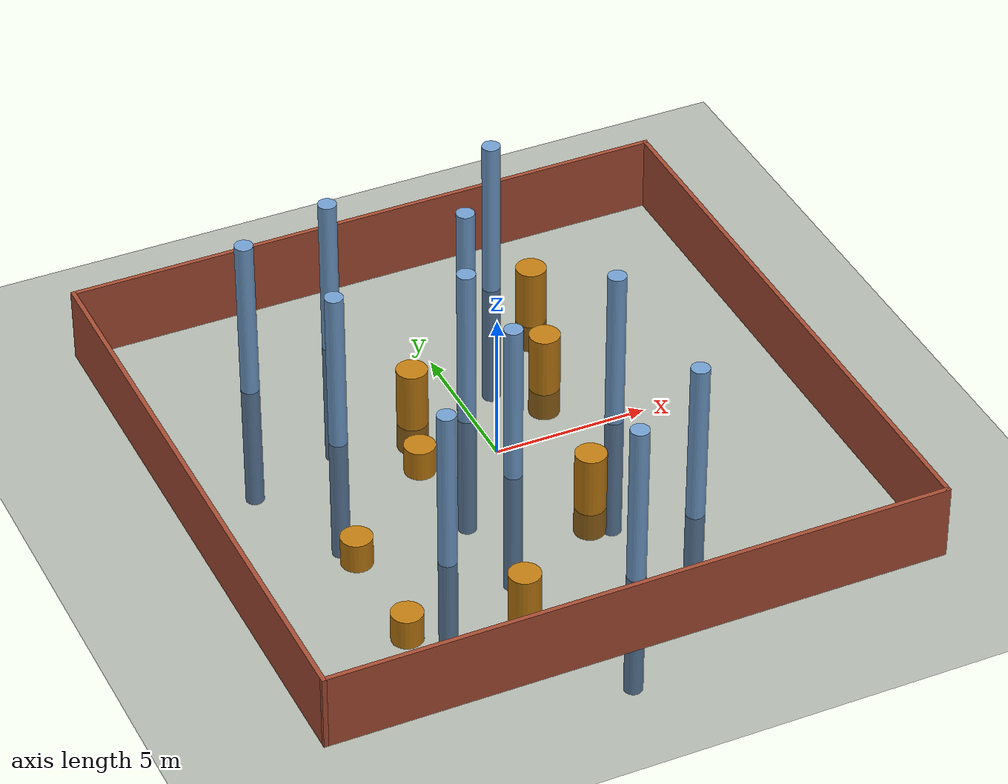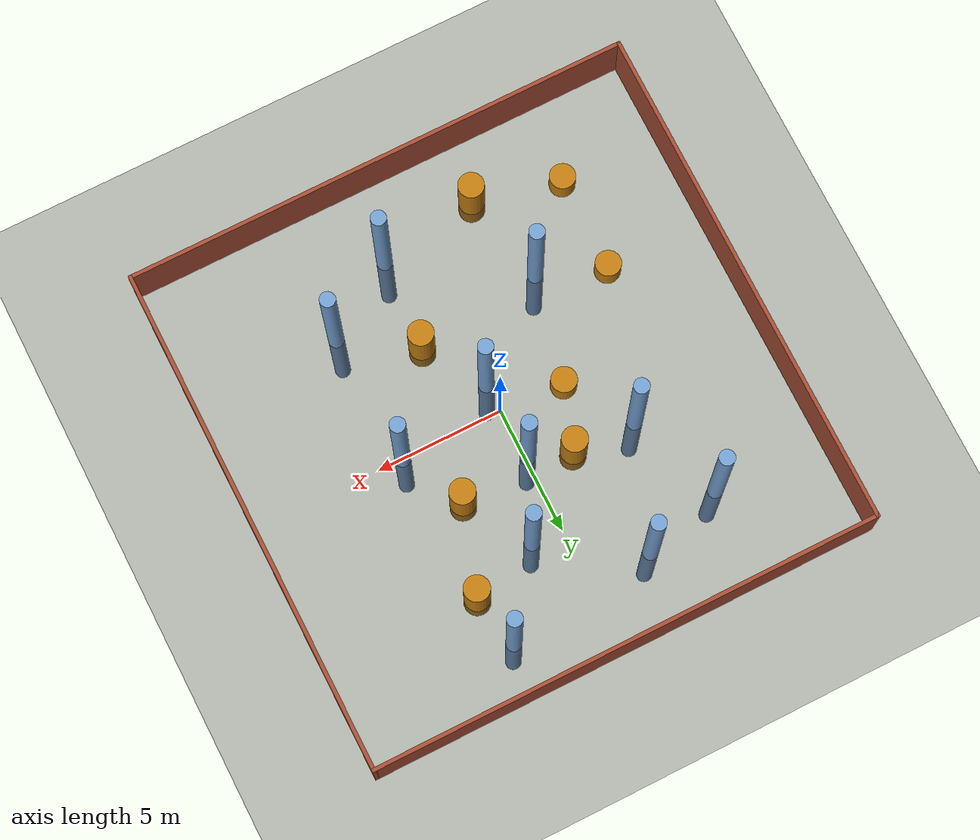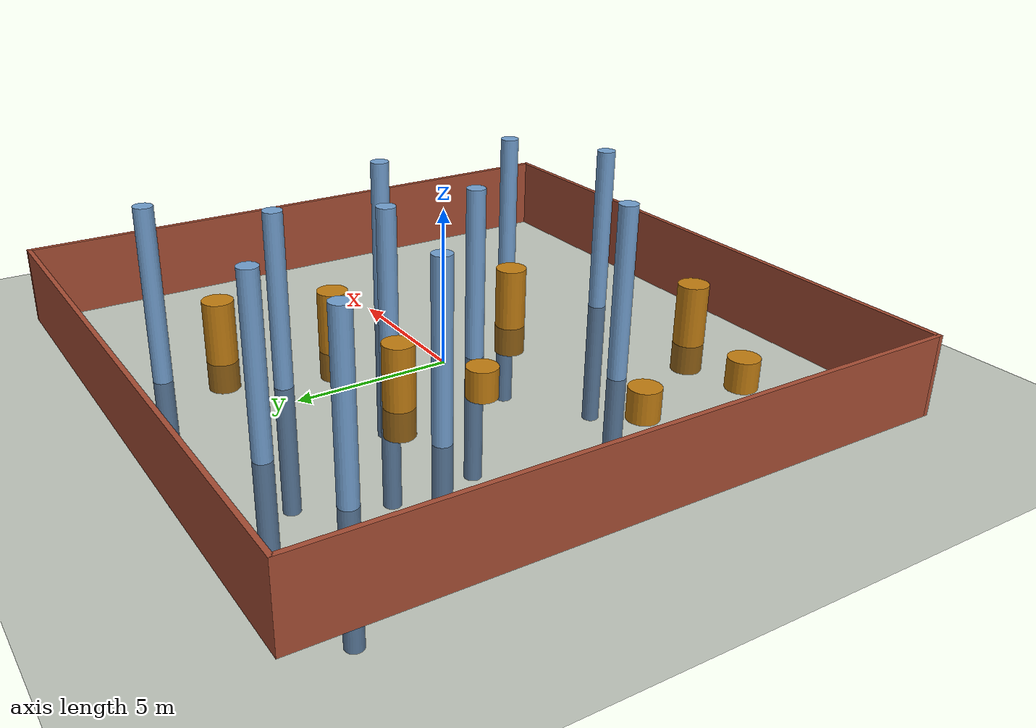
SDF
<sdf version="1.6">
 <world name="default">
  <light name="sun" type="directional">
   <pose>0 0 10 0 -0 3.14159</pose>
   <diffuse>0.8 0.8 0.8 1</diffuse>
   <specular>0.2 0.2 0.2 1</specular>
   <attenuation>
    <range>1000</range>
    <constant>0.9</constant>
    <linear>0.01</linear>
    <quadratic>0.001</quadratic>
   </attenuation>
   <direction>0.5 -0.1 -0.9</direction>
  </light>
  <model name="ground_plane">
   <pose>0 0 0 0 -0 3.14159</pose>
   <static>1</static>
   <link name="link">
    <collision name="collision">
     <geometry><plane><normal>0 0 1</normal><size>100 100</size></plane></geometry>
     <surface><friction><ode><mu>100</mu><mu2>50</mu2></ode></friction></surface>
    </collision>
    <visual name="visual">
     <cast_shadows>0</cast_shadows>
     <geometry><plane><normal>0 0 1</normal><size>100 100</size></plane></geometry>
     <material>
      <script><uri>file://media/materials/scripts/gazebo.material</uri><name>Gazebo/Black</name></script>
     </material>
    </visual>
   </link>
  </model>
  <gravity>0 0 -9.8</gravity>
  <magnetic_field>6e-06 2.3e-05 -4.2e-05</magnetic_field>
  <atmosphere type="adiabatic"/>
  <physics name="default_physics" default="0" type="ode">
   <max_step_size>0.004</max_step_size>
   <real_time_factor>1</real_time_factor>
   <real_time_update_rate>250</real_time_update_rate>
  </physics>
  <scene><ambient>0.4 0.4 0.4 1</ambient><background>0.7 0.7 0.7 1</background><shadows>1</shadows></scene>
  <spherical_coordinates>
   <surface_model>EARTH_WGS84</surface_model>
   <latitude_deg>0</latitude_deg>
   <longitude_deg>0</longitude_deg>
   <elevation>0</elevation>
   <heading_deg>0</heading_deg>
  </spherical_coordinates>
  <model name="blank">
   <pose>0 0 0 0 -0 3.14159</pose>
   <link name="Wall_0">
    <collision name="Wall_0_Collision">
     <geometry><box><size>20.15 0.15 2.5</size></box></geometry>
     <pose>0 0 1.25 0 -0 3.14159</pose>
    </collision>
    <visual name="Wall_0_Visual">
     <pose>0 0 1.25 0 -0 3.14159</pose>
     <geometry><box><size>20.15 0.15 2.5</size></box></geometry>
     <material>
      <script><uri>file://media/materials/scripts/gazebo.material</uri><name>Gazebo/Bricks</name></script>
      <ambient>1 1 1 1</ambient>
     </material>
     <meta><layer>0</layer></meta>
    </visual>
    <pose>0 -10 0 0 -0 3.14159</pose>
   </link>
   <link name="Wall_1">
    <collision name="Wall_1_Collision">
     <geometry><box><size>20.15 0.15 2.5</size></box></geometry>
     <pose>0 0 1.25 0 -0 3.14159</pose>
    </collision>
    <visual name="Wall_1_Visual">
     <pose>0 0 1.25 0 -0 3.14159</pose>
     <geometry><box><size>20.15 0.15 2.5</size></box></geometry>
     <material>
      <script><uri>file://media/materials/scripts/gazebo.material</uri><name>Gazebo/Bricks</name></script>
      <ambient>1 1 1 1</ambient>
     </material>
     <meta><layer>0</layer></meta>
    </visual>
    <pose>-10 0 0 0 -0 1.57079</pose>
   </link>
   <link name="Wall_2">
    <collision name="Wall_2_Collision">
     <geometry><box><size>20.15 0.15 2.5</size></box></geometry>
     <pose>0 0 1.25 0 -0 3.14159</pose>
    </collision>
    <visual name="Wall_2_Visual">
     <pose>0 0 1.25 0 -0 3.14159</pose>
     <geometry><box><size>20.15 0.15 2.5</size></box></geometry>
     <material>
      <script><uri>file://media/materials/scripts/gazebo.material</uri><name>Gazebo/Bricks</name></script>
      <ambient>1 1 1 1</ambient>
     </material>
     <meta><layer>0</layer></meta>
    </visual>
    <pose>0 10 0 0 -0 -2.65359e-06</pose>
   </link>
   <link name="Wall_3">
    <collision name="Wall_3_Collision">
     <geometry><box><size>20.15 0.15 2.5</size></box></geometry>
     <pose>0 0 1.25 0 -0 3.14159</pose>
    </collision>
    <visual name="Wall_3_Visual">
     <pose>0 0 1.25 0 -0 3.14159</pose>
     <geometry><box><size>20.15 0.15 2.5</size></box></geometry>
     <material>
      <script><uri>file://media/materials/scripts/gazebo.material</uri><name>Gazebo/Bricks</name></script>
      <ambient>1 1 1 1</ambient>
     </material>
     <meta><layer>0</layer></meta>
    </visual>
    <pose>10 0 0 0 -0 -1.57079</pose>
   </link>
   <static>1</static>
  </model>
  <model name="unit_cylinder">
   <link name="link">
    <inertial>
     <mass>1</mass>
     <inertia><ixx>0.145833</ixx><ixy>0</ixy><ixz>0</ixz><iyy>0.145833</iyy><iyz>0</iyz><izz>0.125</izz></inertia>
     <pose>0 0 0 0 -0 3.14159</pose>
    </inertial>
    <pose>0 0 0 0 -0 3.14159</pose>
    <visual name="visual">
     <geometry><cylinder><radius>0.5</radius><length>1</length></cylinder></geometry>
     <material>
      <script><name>Gazebo/Grey</name><uri>file://media/materials/scripts/gazebo.material</uri></script>
      <shader type="pixel"><normal_map>__default__</normal_map></shader>
      <ambient>0.757 0.49 0.067 1</ambient>
      <diffuse>0.7 0.7 0.7 1</diffuse>
      <specular>0.01 0.01 0.01 1</specular>
      <emissive>0 0 0 1</emissive>
     </material>
     <pose>0 0 0 0 -0 3.14159</pose>
    </visual>
    <collision name="collision">
     <pose>0 0 0 0 -0 3.14159</pose>
     <geometry><cylinder><radius>0.5</radius><length>1</length></cylinder></geometry>
     <surface>
      <friction>
       <ode><mu>1</mu><mu2>1</mu2><fdir1>0 0 0</fdir1><slip1>0</slip1><slip2>0</slip2></ode>
       <torsional>
        <coefficient>1</coefficient>
        <patch_radius>0</patch_radius>
        <surface_radius>0</surface_radius>
        <use_patch_radius>1</use_patch_radius>
        <ode><slip>0</slip></ode>
       </torsional>
      </friction>
      <bounce><restitution_coefficient>0</restitution_coefficient><threshold>1e+06</threshold></bounce>
      <contact>
       <collide_without_contact>0</collide_without_contact>
       <collide_without_contact_bitmask>1</collide_without_contact_bitmask>
       <collide_bitmask>1</collide_bitmask>
       <ode>
        <soft_cfm>0</soft_cfm>
        <soft_erp>0.2</soft_erp>
        <kp>1e+13</kp>
        <kd>1</kd>
        <max_vel>0.01</max_vel>
        <min_depth>0</min_depth>
       </ode>
       <bullet>
        <split_impulse>1</split_impulse>
        <split_impulse_penetration_threshold>-0.01</split_impulse_penetration_threshold>
        <soft_cfm>0</soft_cfm>
        <soft_erp>0.2</soft_erp>
        <kp>1e+13</kp>
        <kd>1</kd>
       </bullet>
      </contact>
     </surface>
    </collision>
   </link>
   <static>0</static>
   <pose>-6.03209 -6.76866 0.5 0 -0 -3.14159</pose>
  </model>
  <model name="unit_cylinder_0">
   <link name="link">
    <inertial>
     <mass>1</mass>
     <inertia><ixx>0.145833</ixx><ixy>0</ixy><ixz>0</ixz><iyy>0.145833</iyy><iyz>0</iyz><izz>0.125</izz></inertia>
     <pose>0 0 0 0 -0 3.14159</pose>
    </inertial>
    <pose>0 0 0 0 -0 3.14159</pose>
    <visual name="visual">
     <geometry><cylinder><radius>0.5</radius><length>3</length></cylinder></geometry>
     <material>
      <script><name>Gazebo/Grey</name><uri>file://media/materials/scripts/gazebo.material</uri></script>
      <shader type="pixel"><normal_map>__default__</normal_map></shader>
      <ambient>0.757 0.49 0.067 1</ambient>
      <diffuse>0.7 0.7 0.7 1</diffuse>
      <specular>0.01 0.01 0.01 1</specular>
      <emissive>0 0 0 1</emissive>
     </material>
     <pose>0 0 0 0 -0 3.14159</pose>
    </visual>
    <collision name="collision">
     <pose>0 0 0 0 -0 3.14159</pose>
     <geometry><cylinder><radius>0.5</radius><length>1</length></cylinder></geometry>
     <surface>
      <friction>
       <ode><mu>1</mu><mu2>1</mu2><fdir1>0 0 0</fdir1><slip1>0</slip1><slip2>0</slip2></ode>
       <torsional>
        <coefficient>1</coefficient>
        <patch_radius>0</patch_radius>
        <surface_radius>0</surface_radius>
        <use_patch_radius>1</use_patch_radius>
        <ode><slip>0</slip></ode>
       </torsional>
      </friction>
      <bounce><restitution_coefficient>0</restitution_coefficient><threshold>1e+06</threshold></bounce>
      <contact>
       <collide_without_contact>0</collide_without_contact>
       <collide_without_contact_bitmask>1</collide_without_contact_bitmask>
       <collide_bitmask>1</collide_bitmask>
       <ode>
        <soft_cfm>0</soft_cfm>
        <soft_erp>0.2</soft_erp>
        <kp>1e+13</kp>
        <kd>1</kd>
        <max_vel>0.01</max_vel>
        <min_depth>0</min_depth>
       </ode>
       <bullet>
        <split_impulse>1</split_impulse>
        <split_impulse_penetration_threshold>-0.01</split_impulse_penetration_threshold>
        <soft_cfm>0</soft_cfm>
        <soft_erp>0.2</soft_erp>
        <kp>1e+13</kp>
        <kd>1</kd>
       </bullet>
      </contact>
     </surface>
    </collision>
   </link>
   <static>0</static>
   <pose>1.47322 -3.48874 0.5 0 -0 -3.14159</pose>
  </model>
  <model name="unit_cylinder_1">
   <link name="link">
    <inertial>
     <mass>1</mass>
     <inertia><ixx>0.145833</ixx><ixy>0</ixy><ixz>0</ixz><iyy>0.145833</iyy><iyz>0</iyz><izz>0.125</izz></inertia>
     <pose>0 0 0 0 -0 3.14159</pose>
    </inertial>
    <pose>0 0 0 0 -0 3.14159</pose>
    <visual name="visual">
     <geometry><cylinder><radius>0.5</radius><length>3</length></cylinder></geometry>
     <material>
      <script><name>Gazebo/Grey</name><uri>file://media/materials/scripts/gazebo.material</uri></script>
      <shader type="pixel"><normal_map>__default__</normal_map></shader>
      <ambient>0.757 0.49 0.067 1</ambient>
      <diffuse>0.7 0.7 0.7 1</diffuse>
      <specular>0.01 0.01 0.01 1</specular>
      <emissive>0 0 0 1</emissive>
     </material>
     <pose>0 0 0 0 -0 3.14159</pose>
    </visual>
    <collision name="collision">
     <pose>0 0 0 0 -0 3.14159</pose>
     <geometry><cylinder><radius>0.5</radius><length>1</length></cylinder></geometry>
     <surface>
      <friction>
       <ode><mu>1</mu><mu2>1</mu2><fdir1>0 0 0</fdir1><slip1>0</slip1><slip2>0</slip2></ode>
       <torsional>
        <coefficient>1</coefficient>
        <patch_radius>0</patch_radius>
        <surface_radius>0</surface_radius>
        <use_patch_radius>1</use_patch_radius>
        <ode><slip>0</slip></ode>
       </torsional>
      </friction>
      <bounce><restitution_coefficient>0</restitution_coefficient><threshold>1e+06</threshold></bounce>
      <contact>
       <collide_without_contact>0</collide_without_contact>
       <collide_without_contact_bitmask>1</collide_without_contact_bitmask>
       <collide_bitmask>1</collide_bitmask>
       <ode>
        <soft_cfm>0</soft_cfm>
        <soft_erp>0.2</soft_erp>
        <kp>1e+13</kp>
        <kd>1</kd>
        <max_vel>0.01</max_vel>
        <min_depth>0</min_depth>
       </ode>
       <bullet>
        <split_impulse>1</split_impulse>
        <split_impulse_penetration_threshold>-0.01</split_impulse_penetration_threshold>
        <soft_cfm>0</soft_cfm>
        <soft_erp>0.2</soft_erp>
        <kp>1e+13</kp>
        <kd>1</kd>
       </bullet>
      </contact>
     </surface>
    </collision>
   </link>
   <static>0</static>
   <pose>-2.69656 -7.6939 0.5 0 -0 -3.14159</pose>
  </model>
  <model name="unit_cylinder_0_0">
   <link name="link">
    <inertial>
     <mass>1</mass>
     <inertia><ixx>0.145833</ixx><ixy>0</ixy><ixz>0</ixz><iyy>0.145833</iyy><iyz>0</iyz><izz>0.125</izz></inertia>
     <pose>0 0 0 0 -0 3.14159</pose>
    </inertial>
    <pose>0 0 3 0 -0 3.14159</pose>
    <visual name="visual">
     <geometry><cylinder><radius>0.3</radius><length>10</length></cylinder></geometry>
     <material>
      <script><name>Gazebo/Grey</name><uri>file://media/materials/scripts/gazebo.material</uri></script>
      <shader type="pixel"><normal_map>__default__</normal_map></shader>
      <ambient>0.447 0.624 0.812 1</ambient>
      <diffuse>0.7 0.7 0.7 1</diffuse>
      <specular>0.01 0.01 0.01 1</specular>
      <emissive>0 0 0 1</emissive>
     </material>
     <pose>0 0 0 0 -0 3.14159</pose>
    </visual>
    <collision name="collision">
     <pose>0 0 0 0 -0 3.14159</pose>
     <geometry><cylinder><radius>0.5</radius><length>1</length></cylinder></geometry>
     <surface>
      <friction>
       <ode><mu>1</mu><mu2>1</mu2><fdir1>0 0 0</fdir1><slip1>0</slip1><slip2>0</slip2></ode>
       <torsional>
        <coefficient>1</coefficient>
        <patch_radius>0</patch_radius>
        <surface_radius>0</surface_radius>
        <use_patch_radius>1</use_patch_radius>
        <ode><slip>0</slip></ode>
       </torsional>
      </friction>
      <bounce><restitution_coefficient>0</restitution_coefficient><threshold>1e+06</threshold></bounce>
      <contact>
       <collide_without_contact>0</collide_without_contact>
       <collide_without_contact_bitmask>1</collide_without_contact_bitmask>
       <collide_bitmask>1</collide_bitmask>
       <ode>
        <soft_cfm>0</soft_cfm>
        <soft_erp>0.2</soft_erp>
        <kp>1e+13</kp>
        <kd>1</kd>
        <max_vel>0.01</max_vel>
        <min_depth>0</min_depth>
       </ode>
       <bullet>
        <split_impulse>1</split_impulse>
        <split_impulse_penetration_threshold>-0.01</split_impulse_penetration_threshold>
        <soft_cfm>0</soft_cfm>
        <soft_erp>0.2</soft_erp>
        <kp>1e+13</kp>
        <kd>1</kd>
       </bullet>
      </contact>
     </surface>
    </collision>
   </link>
   <static>0</static>
   <pose>-3.51742 -4.05931 -2.5 0 -0 -3.14159</pose>
  </model>
  <model name="unit_cylinder_0_1">
   <link name="link">
    <inertial>
     <mass>1</mass>
     <inertia><ixx>0.145833</ixx><ixy>0</ixy><ixz>0</ixz><iyy>0.145833</iyy><iyz>0</iyz><izz>0.125</izz></inertia>
     <pose>0 0 0 0 -0 3.14159</pose>
    </inertial>
    <pose>0 0 3 0 -0 3.14159</pose>
    <visual name="visual">
     <geometry><cylinder><radius>0.3</radius><length>10</length></cylinder></geometry>
     <material>
      <script><name>Gazebo/Grey</name><uri>file://media/materials/scripts/gazebo.material</uri></script>
      <shader type="pixel"><normal_map>__default__</normal_map></shader>
      <ambient>0.447 0.624 0.812 1</ambient>
      <diffuse>0.7 0.7 0.7 1</diffuse>
      <specular>0.01 0.01 0.01 1</specular>
      <emissive>0 0 0 1</emissive>
     </material>
     <pose>0 0 0 0 -0 3.14159</pose>
    </visual>
    <collision name="collision">
     <pose>0 0 0 0 -0 3.14159</pose>
     <geometry><cylinder><radius>0.5</radius><length>1</length></cylinder></geometry>
     <surface>
      <friction>
       <ode><mu>1</mu><mu2>1</mu2><fdir1>0 0 0</fdir1><slip1>0</slip1><slip2>0</slip2></ode>
       <torsional>
        <coefficient>1</coefficient>
        <patch_radius>0</patch_radius>
        <surface_radius>0</surface_radius>
        <use_patch_radius>1</use_patch_radius>
        <ode><slip>0</slip></ode>
       </torsional>
      </friction>
      <bounce><restitution_coefficient>0</restitution_coefficient><threshold>1e+06</threshold></bounce>
      <contact>
       <collide_without_contact>0</collide_without_contact>
       <collide_without_contact_bitmask>1</collide_without_contact_bitmask>
       <collide_bitmask>1</collide_bitmask>
       <ode>
        <soft_cfm>0</soft_cfm>
        <soft_erp>0.2</soft_erp>
        <kp>1e+13</kp>
        <kd>1</kd>
        <max_vel>0.01</max_vel>
        <min_depth>0</min_depth>
       </ode>
       <bullet>
        <split_impulse>1</split_impulse>
        <split_impulse_penetration_threshold>-0.01</split_impulse_penetration_threshold>
        <soft_cfm>0</soft_cfm>
        <soft_erp>0.2</soft_erp>
        <kp>1e+13</kp>
        <kd>1</kd>
       </bullet>
      </contact>
     </surface>
    </collision>
   </link>
   <static>0</static>
   <pose>-2.4991 7.17041 -2.5 0 -0 -3.14159</pose>
  </model>
  <model name="unit_cylinder_0_2">
   <link name="link">
    <inertial>
     <mass>1</mass>
     <inertia><ixx>0.145833</ixx><ixy>0</ixy><ixz>0</ixz><iyy>0.145833</iyy><iyz>0</iyz><izz>0.125</izz></inertia>
     <pose>0 0 0 0 -0 3.14159</pose>
    </inertial>
    <pose>0 0 3 0 -0 3.14159</pose>
    <visual name="visual">
     <geometry><cylinder><radius>0.3</radius><length>10</length></cylinder></geometry>
     <material>
      <script><name>Gazebo/Grey</name><uri>file://media/materials/scripts/gazebo.material</uri></script>
      <shader type="pixel"><normal_map>__default__</normal_map></shader>
      <ambient>0.447 0.624 0.812 1</ambient>
      <diffuse>0.7 0.7 0.7 1</diffuse>
      <specular>0.01 0.01 0.01 1</specular>
      <emissive>0 0 0 1</emissive>
     </material>
     <pose>0 0 0 0 -0 3.14159</pose>
    </visual>
    <collision name="collision">
     <pose>0 0 0 0 -0 3.14159</pose>
     <geometry><cylinder><radius>0.5</radius><length>1</length></cylinder></geometry>
     <surface>
      <friction>
       <ode><mu>1</mu><mu2>1</mu2><fdir1>0 0 0</fdir1><slip1>0</slip1><slip2>0</slip2></ode>
       <torsional>
        <coefficient>1</coefficient>
        <patch_radius>0</patch_radius>
        <surface_radius>0</surface_radius>
        <use_patch_radius>1</use_patch_radius>
        <ode><slip>0</slip></ode>
       </torsional>
      </friction>
      <bounce><restitution_coefficient>0</restitution_coefficient><threshold>1e+06</threshold></bounce>
      <contact>
       <collide_without_contact>0</collide_without_contact>
       <collide_without_contact_bitmask>1</collide_without_contact_bitmask>
       <collide_bitmask>1</collide_bitmask>
       <ode>
        <soft_cfm>0</soft_cfm>
        <soft_erp>0.2</soft_erp>
        <kp>1e+13</kp>
        <kd>1</kd>
        <max_vel>0.01</max_vel>
        <min_depth>0</min_depth>
       </ode>
       <bullet>
        <split_impulse>1</split_impulse>
        <split_impulse_penetration_threshold>-0.01</split_impulse_penetration_threshold>
        <soft_cfm>0</soft_cfm>
        <soft_erp>0.2</soft_erp>
        <kp>1e+13</kp>
        <kd>1</kd>
       </bullet>
      </contact>
     </surface>
    </collision>
   </link>
   <static>0</static>
   <pose>-5.67976 6.20918 -2.5 0 -0 -3.14159</pose>
  </model>
  <model name="unit_cylinder_0_3">
   <link name="link">
    <inertial>
     <mass>1</mass>
     <inertia><ixx>0.145833</ixx><ixy>0</ixy><ixz>0</ixz><iyy>0.145833</iyy><iyz>0</iyz><izz>0.125</izz></inertia>
     <pose>0 0 0 0 -0 3.14159</pose>
    </inertial>
    <pose>0 0 3 0 -0 3.14159</pose>
    <visual name="visual">
     <geometry><cylinder><radius>0.3</radius><length>10</length></cylinder></geometry>
     <material>
      <script><name>Gazebo/Grey</name><uri>file://media/materials/scripts/gazebo.material</uri></script>
      <shader type="pixel"><normal_map>__default__</normal_map></shader>
      <ambient>0.447 0.624 0.812 1</ambient>
      <diffuse>0.7 0.7 0.7 1</diffuse>
      <specular>0.01 0.01 0.01 1</specular>
      <emissive>0 0 0 1</emissive>
     </material>
     <pose>0 0 0 0 -0 3.14159</pose>
    </visual>
    <collision name="collision">
     <pose>0 0 0 0 -0 3.14159</pose>
     <geometry><cylinder><radius>0.5</radius><length>1</length></cylinder></geometry>
     <surface>
      <friction>
       <ode><mu>1</mu><mu2>1</mu2><fdir1>0 0 0</fdir1><slip1>0</slip1><slip2>0</slip2></ode>
       <torsional>
        <coefficient>1</coefficient>
        <patch_radius>0</patch_radius>
        <surface_radius>0</surface_radius>
        <use_patch_radius>1</use_patch_radius>
        <ode><slip>0</slip></ode>
       </torsional>
      </friction>
      <bounce><restitution_coefficient>0</restitution_coefficient><threshold>1e+06</threshold></bounce>
      <contact>
       <collide_without_contact>0</collide_without_contact>
       <collide_without_contact_bitmask>1</collide_without_contact_bitmask>
       <collide_bitmask>1</collide_bitmask>
       <ode>
        <soft_cfm>0</soft_cfm>
        <soft_erp>0.2</soft_erp>
        <kp>1e+13</kp>
        <kd>1</kd>
        <max_vel>0.01</max_vel>
        <min_depth>0</min_depth>
       </ode>
       <bullet>
        <split_impulse>1</split_impulse>
        <split_impulse_penetration_threshold>-0.01</split_impulse_penetration_threshold>
        <soft_cfm>0</soft_cfm>
        <soft_erp>0.2</soft_erp>
        <kp>1e+13</kp>
        <kd>1</kd>
       </bullet>
      </contact>
     </surface>
    </collision>
   </link>
   <static>0</static>
   <pose>-4.22335 2.59857 -2.5 0 -0 -3.14159</pose>
  </model>
  <model name="unit_cylinder_0_4">
   <link name="link">
    <inertial>
     <mass>1</mass>
     <inertia><ixx>0.145833</ixx><ixy>0</ixy><ixz>0</ixz><iyy>0.145833</iyy><iyz>0</iyz><izz>0.125</izz></inertia>
     <pose>0 0 0 0 -0 3.14159</pose>
    </inertial>
    <pose>0 0 3 0 -0 3.14159</pose>
    <visual name="visual">
     <geometry><cylinder><radius>0.3</radius><length>10</length></cylinder></geometry>
     <material>
      <script><name>Gazebo/Grey</name><uri>file://media/materials/scripts/gazebo.material</uri></script>
      <shader type="pixel"><normal_map>__default__</normal_map></shader>
      <ambient>0.447 0.624 0.812 1</ambient>
      <diffuse>0.7 0.7 0.7 1</diffuse>
      <specular>0.01 0.01 0.01 1</specular>
      <emissive>0 0 0 1</emissive>
     </material>
     <pose>0 0 0 0 -0 3.14159</pose>
    </visual>
    <collision name="collision">
     <pose>0 0 0 0 -0 3.14159</pose>
     <geometry><cylinder><radius>0.5</radius><length>1</length></cylinder></geometry>
     <surface>
      <friction>
       <ode><mu>1</mu><mu2>1</mu2><fdir1>0 0 0</fdir1><slip1>0</slip1><slip2>0</slip2></ode>
       <torsional>
        <coefficient>1</coefficient>
        <patch_radius>0</patch_radius>
        <surface_radius>0</surface_radius>
        <use_patch_radius>1</use_patch_radius>
        <ode><slip>0</slip></ode>
       </torsional>
      </friction>
      <bounce><restitution_coefficient>0</restitution_coefficient><threshold>1e+06</threshold></bounce>
      <contact>
       <collide_without_contact>0</collide_without_contact>
       <collide_without_contact_bitmask>1</collide_without_contact_bitmask>
       <collide_bitmask>1</collide_bitmask>
       <ode>
        <soft_cfm>0</soft_cfm>
        <soft_erp>0.2</soft_erp>
        <kp>1e+13</kp>
        <kd>1</kd>
        <max_vel>0.01</max_vel>
        <min_depth>0</min_depth>
       </ode>
       <bullet>
        <split_impulse>1</split_impulse>
        <split_impulse_penetration_threshold>-0.01</split_impulse_penetration_threshold>
        <soft_cfm>0</soft_cfm>
        <soft_erp>0.2</soft_erp>
        <kp>1e+13</kp>
        <kd>1</kd>
       </bullet>
      </contact>
     </surface>
    </collision>
   </link>
   <static>0</static>
   <pose>1.26845 -7.03922 -2.5 0 -0 -3.14159</pose>
  </model>
  <model name="unit_cylinder_0_5">
   <link name="link">
    <inertial>
     <mass>1</mass>
     <inertia><ixx>0.145833</ixx><ixy>0</ixy><ixz>0</ixz><iyy>0.145833</iyy><iyz>0</iyz><izz>0.125</izz></inertia>
     <pose>0 0 0 0 -0 3.14159</pose>
    </inertial>
    <pose>0 0 3 0 -0 3.14159</pose>
    <visual name="visual">
     <geometry><cylinder><radius>0.3</radius><length>10</length></cylinder></geometry>
     <material>
      <script><name>Gazebo/Grey</name><uri>file://media/materials/scripts/gazebo.material</uri></script>
      <shader type="pixel"><normal_map>__default__</normal_map></shader>
      <ambient>0.447 0.624 0.812 1</ambient>
      <diffuse>0.7 0.7 0.7 1</diffuse>
      <specular>0.01 0.01 0.01 1</specular>
      <emissive>0 0 0 1</emissive>
     </material>
     <pose>0 0 0 0 -0 3.14159</pose>
    </visual>
    <collision name="collision">
     <pose>0 0 0 0 -0 3.14159</pose>
     <geometry><cylinder><radius>0.5</radius><length>1</length></cylinder></geometry>
     <surface>
      <friction>
       <ode><mu>1</mu><mu2>1</mu2><fdir1>0 0 0</fdir1><slip1>0</slip1><slip2>0</slip2></ode>
       <torsional>
        <coefficient>1</coefficient>
        <patch_radius>0</patch_radius>
        <surface_radius>0</surface_radius>
        <use_patch_radius>1</use_patch_radius>
        <ode><slip>0</slip></ode>
       </torsional>
      </friction>
      <bounce><restitution_coefficient>0</restitution_coefficient><threshold>1e+06</threshold></bounce>
      <contact>
       <collide_without_contact>0</collide_without_contact>
       <collide_without_contact_bitmask>1</collide_without_contact_bitmask>
       <collide_bitmask>1</collide_bitmask>
       <ode>
        <soft_cfm>0</soft_cfm>
        <soft_erp>0.2</soft_erp>
        <kp>1e+13</kp>
        <kd>1</kd>
        <max_vel>0.01</max_vel>
        <min_depth>0</min_depth>
       </ode>
       <bullet>
        <split_impulse>1</split_impulse>
        <split_impulse_penetration_threshold>-0.01</split_impulse_penetration_threshold>
        <soft_cfm>0</soft_cfm>
        <soft_erp>0.2</soft_erp>
        <kp>1e+13</kp>
        <kd>1</kd>
       </bullet>
      </contact>
     </surface>
    </collision>
   </link>
   <static>0</static>
   <pose>0 -1.12821 -2.5 0 -0 -3.14159</pose>
  </model>
  <model name="unit_cylinder_0_6">
   <link name="link">
    <inertial>
     <mass>1</mass>
     <inertia><ixx>0.145833</ixx><ixy>0</ixy><ixz>0</ixz><iyy>0.145833</iyy><iyz>0</iyz><izz>0.125</izz></inertia>
     <pose>0 0 0 0 -0 3.14159</pose>
    </inertial>
    <pose>0 0 3 0 -0 3.14159</pose>
    <visual name="visual">
     <geometry><cylinder><radius>0.3</radius><length>10</length></cylinder></geometry>
     <material>
      <script><name>Gazebo/Grey</name><uri>file://media/materials/scripts/gazebo.material</uri></script>
      <shader type="pixel"><normal_map>__default__</normal_map></shader>
      <ambient>0.447 0.624 0.812 1</ambient>
      <diffuse>0.7 0.7 0.7 1</diffuse>
      <specular>0.01 0.01 0.01 1</specular>
      <emissive>0 0 0 1</emissive>
     </material>
     <pose>0 0 0 0 -0 3.14159</pose>
    </visual>
    <collision name="collision">
     <pose>0 0 0 0 -0 3.14159</pose>
     <geometry><cylinder><radius>0.5</radius><length>1</length></cylinder></geometry>
     <surface>
      <friction>
       <ode><mu>1</mu><mu2>1</mu2><fdir1>0 0 0</fdir1><slip1>0</slip1><slip2>0</slip2></ode>
       <torsional>
        <coefficient>1</coefficient>
        <patch_radius>0</patch_radius>
        <surface_radius>0</surface_radius>
        <use_patch_radius>1</use_patch_radius>
        <ode><slip>0</slip></ode>
       </torsional>
      </friction>
      <bounce><restitution_coefficient>0</restitution_coefficient><threshold>1e+06</threshold></bounce>
      <contact>
       <collide_without_contact>0</collide_without_contact>
       <collide_without_contact_bitmask>1</collide_without_contact_bitmask>
       <collide_bitmask>1</collide_bitmask>
       <ode>
        <soft_cfm>0</soft_cfm>
        <soft_erp>0.2</soft_erp>
        <kp>1e+13</kp>
        <kd>1</kd>
        <max_vel>0.01</max_vel>
        <min_depth>0</min_depth>
       </ode>
       <bullet>
        <split_impulse>1</split_impulse>
        <split_impulse_penetration_threshold>-0.01</split_impulse_penetration_threshold>
        <soft_cfm>0</soft_cfm>
        <soft_erp>0.2</soft_erp>
        <kp>1e+13</kp>
        <kd>1</kd>
       </bullet>
      </contact>
     </surface>
    </collision>
   </link>
   <static>0</static>
   <pose>1.18762 4.92062 -2.5 0 -0 -3.14159</pose>
  </model>
  <model name="unit_cylinder_2">
   <link name="link">
    <inertial>
     <mass>1</mass>
     <inertia><ixx>0.145833</ixx><ixy>0</ixy><ixz>0</ixz><iyy>0.145833</iyy><iyz>0</iyz><izz>0.125</izz></inertia>
     <pose>0 0 0 0 -0 3.14159</pose>
    </inertial>
    <pose>0 0 0 0 -0 3.14159</pose>
    <visual name="visual">
     <geometry><cylinder><radius>0.5</radius><length>1</length></cylinder></geometry>
     <material>
      <script><name>Gazebo/Grey</name><uri>file://media/materials/scripts/gazebo.material</uri></script>
      <shader type="pixel"><normal_map>__default__</normal_map></shader>
      <ambient>0.757 0.49 0.067 1</ambient>
      <diffuse>0.7 0.7 0.7 1</diffuse>
      <specular>0.01 0.01 0.01 1</specular>
      <emissive>0 0 0 1</emissive>
     </material>
     <pose>0 0 0 0 -0 3.14159</pose>
    </visual>
    <collision name="collision">
     <pose>0 0 0 0 -0 3.14159</pose>
     <geometry><cylinder><radius>0.5</radius><length>1</length></cylinder></geometry>
     <surface>
      <friction>
       <ode><mu>1</mu><mu2>1</mu2><fdir1>0 0 0</fdir1><slip1>0</slip1><slip2>0</slip2></ode>
       <torsional>
        <coefficient>1</coefficient>
        <patch_radius>0</patch_radius>
        <surface_radius>0</surface_radius>
        <use_patch_radius>1</use_patch_radius>
        <ode><slip>0</slip></ode>
       </torsional>
      </friction>
      <bounce><restitution_coefficient>0</restitution_coefficient><threshold>1e+06</threshold></bounce>
      <contact>
       <collide_without_contact>0</collide_without_contact>
       <collide_without_contact_bitmask>1</collide_without_contact_bitmask>
       <collide_bitmask>1</collide_bitmask>
       <ode>
        <soft_cfm>0</soft_cfm>
        <soft_erp>0.2</soft_erp>
        <kp>1e+13</kp>
        <kd>1</kd>
        <max_vel>0.01</max_vel>
        <min_depth>0</min_depth>
       </ode>
       <bullet>
        <split_impulse>1</split_impulse>
        <split_impulse_penetration_threshold>-0.01</split_impulse_penetration_threshold>
        <soft_cfm>0</soft_cfm>
        <soft_erp>0.2</soft_erp>
        <kp>1e+13</kp>
        <kd>1</kd>
       </bullet>
      </contact>
     </surface>
    </collision>
   </link>
   <static>0</static>
   <pose>-6 -2.99999 0.5 0 -0 3.14159</pose>
  </model>
  <model name="unit_cylinder_3">
   <link name="link">
    <inertial>
     <mass>1</mass>
     <inertia><ixx>0.145833</ixx><ixy>0</ixy><ixz>0</ixz><iyy>0.145833</iyy><iyz>0</iyz><izz>0.125</izz></inertia>
     <pose>0 0 0 0 -0 3.14159</pose>
    </inertial>
    <pose>0 0 0 0 -0 3.14159</pose>
    <visual name="visual">
     <geometry><cylinder><radius>0.5</radius><length>3</length></cylinder></geometry>
     <material>
      <script><name>Gazebo/Grey</name><uri>file://media/materials/scripts/gazebo.material</uri></script>
      <shader type="pixel"><normal_map>__default__</normal_map></shader>
      <ambient>0.757 0.49 0.067 1</ambient>
      <diffuse>0.7 0.7 0.7 1</diffuse>
      <specular>0.01 0.01 0.01 1</specular>
      <emissive>0 0 0 1</emissive>
     </material>
     <pose>0 0 0 0 -0 3.14159</pose>
    </visual>
    <collision name="collision">
     <pose>0 0 0 0 -0 3.14159</pose>
     <geometry><cylinder><radius>0.5</radius><length>1</length></cylinder></geometry>
     <surface>
      <friction>
       <ode><mu>1</mu><mu2>1</mu2><fdir1>0 0 0</fdir1><slip1>0</slip1><slip2>0</slip2></ode>
       <torsional>
        <coefficient>1</coefficient>
        <patch_radius>0</patch_radius>
        <surface_radius>0</surface_radius>
        <use_patch_radius>1</use_patch_radius>
        <ode><slip>0</slip></ode>
       </torsional>
      </friction>
      <bounce><restitution_coefficient>0</restitution_coefficient><threshold>1e+06</threshold></bounce>
      <contact>
       <collide_without_contact>0</collide_without_contact>
       <collide_without_contact_bitmask>1</collide_without_contact_bitmask>
       <collide_bitmask>1</collide_bitmask>
       <ode>
        <soft_cfm>0</soft_cfm>
        <soft_erp>0.2</soft_erp>
        <kp>1e+13</kp>
        <kd>1</kd>
        <max_vel>0.01</max_vel>
        <min_depth>0</min_depth>
       </ode>
       <bullet>
        <split_impulse>1</split_impulse>
        <split_impulse_penetration_threshold>-0.01</split_impulse_penetration_threshold>
        <soft_cfm>0</soft_cfm>
        <soft_erp>0.2</soft_erp>
        <kp>1e+13</kp>
        <kd>1</kd>
       </bullet>
      </contact>
     </surface>
    </collision>
   </link>
   <static>0</static>
   <pose>-1.72442 2.55613 0.5 0 -0 -3.14159</pose>
  </model>
  <model name="unit_cylinder_4">
   <link name="link">
    <inertial>
     <mass>1</mass>
     <inertia><ixx>0.145833</ixx><ixy>0</ixy><ixz>0</ixz><iyy>0.145833</iyy><iyz>0</iyz><izz>0.125</izz></inertia>
     <pose>0 0 0 0 -0 3.14159</pose>
    </inertial>
    <pose>0 0 0 0 -0 3.14159</pose>
    <visual name="visual">
     <geometry><cylinder><radius>0.5</radius><length>3</length></cylinder></geometry>
     <material>
      <script><name>Gazebo/Grey</name><uri>file://media/materials/scripts/gazebo.material</uri></script>
      <shader type="pixel"><normal_map>__default__</normal_map></shader>
      <ambient>0.757 0.49 0.067 1</ambient>
      <diffuse>0.7 0.7 0.7 1</diffuse>
      <specular>0.01 0.01 0.01 1</specular>
      <emissive>0 0 0 1</emissive>
     </material>
     <pose>0 0 0 0 -0 3.14159</pose>
    </visual>
    <collision name="collision">
     <pose>0 0 0 0 -0 3.14159</pose>
     <geometry><cylinder><radius>0.5</radius><length>1</length></cylinder></geometry>
     <surface>
      <friction>
       <ode><mu>1</mu><mu2>1</mu2><fdir1>0 0 0</fdir1><slip1>0</slip1><slip2>0</slip2></ode>
       <torsional>
        <coefficient>1</coefficient>
        <patch_radius>0</patch_radius>
        <surface_radius>0</surface_radius>
        <use_patch_radius>1</use_patch_radius>
        <ode><slip>0</slip></ode>
       </torsional>
      </friction>
      <bounce><restitution_coefficient>0</restitution_coefficient><threshold>1e+06</threshold></bounce>
      <contact>
       <collide_without_contact>0</collide_without_contact>
       <collide_without_contact_bitmask>1</collide_without_contact_bitmask>
       <collide_bitmask>1</collide_bitmask>
       <ode>
        <soft_cfm>0</soft_cfm>
        <soft_erp>0.2</soft_erp>
        <kp>1e+13</kp>
        <kd>1</kd>
        <max_vel>0.01</max_vel>
        <min_depth>0</min_depth>
       </ode>
       <bullet>
        <split_impulse>1</split_impulse>
        <split_impulse_penetration_threshold>-0.01</split_impulse_penetration_threshold>
        <soft_cfm>0</soft_cfm>
        <soft_erp>0.2</soft_erp>
        <kp>1e+13</kp>
        <kd>1</kd>
       </bullet>
      </contact>
     </surface>
    </collision>
   </link>
   <static>0</static>
   <pose>2.75559 2.44735 0.5 0 -0 -3.14159</pose>
  </model>
  <model name="unit_cylinder_0_6_clone">
   <link name="link">
    <inertial>
     <mass>1</mass>
     <inertia><ixx>0.145833</ixx><ixy>0</ixy><ixz>0</ixz><iyy>0.145833</iyy><iyz>0</iyz><izz>0.125</izz></inertia>
     <pose>0 0 0 0 -0 3.14159</pose>
    </inertial>
    <pose>0 0 3 0 -0 3.14159</pose>
    <visual name="visual">
     <geometry><cylinder><radius>0.3</radius><length>10</length></cylinder></geometry>
     <material>
      <script><name>Gazebo/Grey</name><uri>file://media/materials/scripts/gazebo.material</uri></script>
      <shader type="pixel"><normal_map>__default__</normal_map></shader>
      <ambient>0.447 0.624 0.812 1</ambient>
      <diffuse>0.7 0.7 0.7 1</diffuse>
      <specular>0.01 0.01 0.01 1</specular>
      <emissive>0 0 0 1</emissive>
     </material>
     <pose>0 0 0 0 -0 3.14159</pose>
    </visual>
    <collision name="collision">
     <pose>0 0 0 0 -0 3.14159</pose>
     <geometry><cylinder><radius>0.5</radius><length>1</length></cylinder></geometry>
     <surface>
      <friction>
       <ode><mu>1</mu><mu2>1</mu2><fdir1>0 0 0</fdir1><slip1>0</slip1><slip2>0</slip2></ode>
       <torsional>
        <coefficient>1</coefficient>
        <patch_radius>0</patch_radius>
        <surface_radius>0</surface_radius>
        <use_patch_radius>1</use_patch_radius>
        <ode><slip>0</slip></ode>
       </torsional>
      </friction>
      <bounce><restitution_coefficient>0</restitution_coefficient><threshold>1e+06</threshold></bounce>
      <contact>
       <collide_without_contact>0</collide_without_contact>
       <collide_without_contact_bitmask>1</collide_without_contact_bitmask>
       <collide_bitmask>1</collide_bitmask>
       <ode>
        <soft_cfm>0</soft_cfm>
        <soft_erp>0.2</soft_erp>
        <kp>1e+13</kp>
        <kd>1</kd>
        <max_vel>0.01</max_vel>
        <min_depth>0</min_depth>
       </ode>
       <bullet>
        <split_impulse>1</split_impulse>
        <split_impulse_penetration_threshold>-0.01</split_impulse_penetration_threshold>
        <soft_cfm>0</soft_cfm>
        <soft_erp>0.2</soft_erp>
        <kp>1e+13</kp>
        <kd>1</kd>
       </bullet>
      </contact>
     </surface>
    </collision>
   </link>
   <static>0</static>
   <pose>3.99996 -0.001786 -2.50001 -1.7e-05 -1.7e-05 3.14159</pose>
  </model>
  <model name="unit_cylinder_0_6_clone_clone">
   <link name="link">
    <inertial>
     <mass>1</mass>
     <inertia><ixx>0.145833</ixx><ixy>0</ixy><ixz>0</ixz><iyy>0.145833</iyy><iyz>0</iyz><izz>0.125</izz></inertia>
     <pose>0 0 0 0 -0 3.14159</pose>
    </inertial>
    <pose>0 0 3 0 -0 3.14159</pose>
    <visual name="visual">
     <geometry><cylinder><radius>0.3</radius><length>10</length></cylinder></geometry>
     <material>
      <script><name>Gazebo/Grey</name><uri>file://media/materials/scripts/gazebo.material</uri></script>
      <shader type="pixel"><normal_map>__default__</normal_map></shader>
      <ambient>0.447 0.624 0.812 1</ambient>
      <diffuse>0.7 0.7 0.7 1</diffuse>
      <specular>0.01 0.01 0.01 1</specular>
      <emissive>0 0 0 1</emissive>
     </material>
     <pose>0 0 0 0 -0 3.14159</pose>
    </visual>
    <collision name="collision">
     <pose>0 0 0 0 -0 3.14159</pose>
     <geometry><cylinder><radius>0.5</radius><length>1</length></cylinder></geometry>
     <surface>
      <friction>
       <ode><mu>1</mu><mu2>1</mu2><fdir1>0 0 0</fdir1><slip1>0</slip1><slip2>0</slip2></ode>
       <torsional>
        <coefficient>1</coefficient>
        <patch_radius>0</patch_radius>
        <surface_radius>0</surface_radius>
        <use_patch_radius>1</use_patch_radius>
        <ode><slip>0</slip></ode>
       </torsional>
      </friction>
      <bounce><restitution_coefficient>0</restitution_coefficient><threshold>1e+06</threshold></bounce>
      <contact>
       <collide_without_contact>0</collide_without_contact>
       <collide_without_contact_bitmask>1</collide_without_contact_bitmask>
       <collide_bitmask>1</collide_bitmask>
       <ode>
        <soft_cfm>0</soft_cfm>
        <soft_erp>0.2</soft_erp>
        <kp>1e+13</kp>
        <kd>1</kd>
        <max_vel>0.01</max_vel>
        <min_depth>0</min_depth>
       </ode>
       <bullet>
        <split_impulse>1</split_impulse>
        <split_impulse_penetration_threshold>-0.01</split_impulse_penetration_threshold>
        <soft_cfm>0</soft_cfm>
        <soft_erp>0.2</soft_erp>
        <kp>1e+13</kp>
        <kd>1</kd>
       </bullet>
      </contact>
     </surface>
    </collision>
   </link>
   <static>0</static>
   <pose>4.18914 -5.163 -2.5 0 -0 -3.14159</pose>
  </model>
  <model name="unit_cylinder_4_clone">
   <link name="link">
    <inertial>
     <mass>1</mass>
     <inertia><ixx>0.145833</ixx><ixy>0</ixy><ixz>0</ixz><iyy>0.145833</iyy><iyz>0</iyz><izz>0.125</izz></inertia>
     <pose>0 0 0 0 -0 3.14159</pose>
    </inertial>
    <pose>0 0 0 0 -0 3.14159</pose>
    <visual name="visual">
     <geometry><cylinder><radius>0.5</radius><length>3</length></cylinder></geometry>
     <material>
      <script><name>Gazebo/Grey</name><uri>file://media/materials/scripts/gazebo.material</uri></script>
      <shader type="pixel"><normal_map>__default__</normal_map></shader>
      <ambient>0.757 0.49 0.067 1</ambient>
      <diffuse>0.7 0.7 0.7 1</diffuse>
      <specular>0.01 0.01 0.01 1</specular>
      <emissive>0 0 0 1</emissive>
     </material>
     <pose>0 0 0 0 -0 3.14159</pose>
    </visual>
    <collision name="collision">
     <pose>0 0 0 0 -0 3.14159</pose>
     <geometry><cylinder><radius>0.5</radius><length>1</length></cylinder></geometry>
     <surface>
      <friction>
       <ode><mu>1</mu><mu2>1</mu2><fdir1>0 0 0</fdir1><slip1>0</slip1><slip2>0</slip2></ode>
       <torsional>
        <coefficient>1</coefficient>
        <patch_radius>0</patch_radius>
        <surface_radius>0</surface_radius>
        <use_patch_radius>1</use_patch_radius>
        <ode><slip>0</slip></ode>
       </torsional>
      </friction>
      <bounce><restitution_coefficient>0</restitution_coefficient><threshold>1e+06</threshold></bounce>
      <contact>
       <collide_without_contact>0</collide_without_contact>
       <collide_without_contact_bitmask>1</collide_without_contact_bitmask>
       <collide_bitmask>1</collide_bitmask>
       <ode>
        <soft_cfm>0</soft_cfm>
        <soft_erp>0.2</soft_erp>
        <kp>1e+13</kp>
        <kd>1</kd>
        <max_vel>0.01</max_vel>
        <min_depth>0</min_depth>
       </ode>
       <bullet>
        <split_impulse>1</split_impulse>
        <split_impulse_penetration_threshold>-0.01</split_impulse_penetration_threshold>
        <soft_cfm>0</soft_cfm>
        <soft_erp>0.2</soft_erp>
        <kp>1e+13</kp>
        <kd>1</kd>
       </bullet>
      </contact>
     </surface>
    </collision>
   </link>
   <static>0</static>
   <pose>3.8786 5.8275 0.5 0 -0 -3.14159</pose>
  </model>
  <model name="unit_cylinder_0_6_clone_0">
   <link name="link">
    <inertial>
     <mass>1</mass>
     <inertia><ixx>0.145833</ixx><ixy>0</ixy><ixz>0</ixz><iyy>0.145833</iyy><iyz>0</iyz><izz>0.125</izz></inertia>
     <pose>0 0 0 0 -0 3.14159</pose>
    </inertial>
    <pose>0 0 3 0 -0 3.14159</pose>
    <visual name="visual">
     <geometry><cylinder><radius>0.3</radius><length>10</length></cylinder></geometry>
     <material>
      <script><name>Gazebo/Grey</name><uri>file://media/materials/scripts/gazebo.material</uri></script>
      <shader type="pixel"><normal_map>__default__</normal_map></shader>
      <ambient>0.447 0.624 0.812 1</ambient>
      <diffuse>0.7 0.7 0.7 1</diffuse>
      <specular>0.01 0.01 0.01 1</specular>
      <emissive>0 0 0 1</emissive>
     </material>
     <pose>0 0 0 0 -0 3.14159</pose>
    </visual>
    <collision name="collision">
     <pose>0 0 0 0 -0 3.14159</pose>
     <geometry><cylinder><radius>0.5</radius><length>1</length></cylinder></geometry>
     <surface>
      <friction>
       <ode><mu>1</mu><mu2>1</mu2><fdir1>0 0 0</fdir1><slip1>0</slip1><slip2>0</slip2></ode>
       <torsional>
        <coefficient>1</coefficient>
        <patch_radius>0</patch_radius>
        <surface_radius>0</surface_radius>
        <use_patch_radius>1</use_patch_radius>
        <ode><slip>0</slip></ode>
       </torsional>
      </friction>
      <bounce><restitution_coefficient>0</restitution_coefficient><threshold>1e+06</threshold></bounce>
      <contact>
       <collide_without_contact>0</collide_without_contact>
       <collide_without_contact_bitmask>1</collide_without_contact_bitmask>
       <collide_bitmask>1</collide_bitmask>
       <ode>
        <soft_cfm>0</soft_cfm>
        <soft_erp>0.2</soft_erp>
        <kp>1e+13</kp>
        <kd>1</kd>
        <max_vel>0.01</max_vel>
        <min_depth>0</min_depth>
       </ode>
       <bullet>
        <split_impulse>1</split_impulse>
        <split_impulse_penetration_threshold>-0.01</split_impulse_penetration_threshold>
        <soft_cfm>0</soft_cfm>
        <soft_erp>0.2</soft_erp>
        <kp>1e+13</kp>
        <kd>1</kd>
       </bullet>
      </contact>
     </surface>
    </collision>
   </link>
   <static>0</static>
   <pose>-0.124133 1.99996 -2.50015 1.7e-05 1.7e-05 3.14159</pose>
  </model>
  <model name="unit_cylinder_0_2_clone">
   <link name="link">
    <inertial>
     <mass>1</mass>
     <inertia><ixx>0.145833</ixx><ixy>0</ixy><ixz>0</ixz><iyy>0.145833</iyy><iyz>0</iyz><izz>0.125</izz></inertia>
     <pose>0 0 0 0 -0 3.14159</pose>
    </inertial>
    <pose>0 0 3 0 -0 3.14159</pose>
    <visual name="visual">
     <geometry><cylinder><radius>0.3</radius><length>10</length></cylinder></geometry>
     <material>
      <script><name>Gazebo/Grey</name><uri>file://media/materials/scripts/gazebo.material</uri></script>
      <shader type="pixel"><normal_map>__default__</normal_map></shader>
      <ambient>0.447 0.624 0.812 1</ambient>
      <diffuse>0.7 0.7 0.7 1</diffuse>
      <specular>0.01 0.01 0.01 1</specular>
      <emissive>0 0 0 1</emissive>
     </material>
     <pose>0 0 0 0 -0 3.14159</pose>
    </visual>
    <collision name="collision">
     <pose>0 0 0 0 -0 3.14159</pose>
     <geometry><cylinder><radius>0.5</radius><length>1</length></cylinder></geometry>
     <surface>
      <friction>
       <ode><mu>1</mu><mu2>1</mu2><fdir1>0 0 0</fdir1><slip1>0</slip1><slip2>0</slip2></ode>
       <torsional>
        <coefficient>1</coefficient>
        <patch_radius>0</patch_radius>
        <surface_radius>0</surface_radius>
        <use_patch_radius>1</use_patch_radius>
        <ode><slip>0</slip></ode>
       </torsional>
      </friction>
      <bounce><restitution_coefficient>0</restitution_coefficient><threshold>1e+06</threshold></bounce>
      <contact>
       <collide_without_contact>0</collide_without_contact>
       <collide_without_contact_bitmask>1</collide_without_contact_bitmask>
       <collide_bitmask>1</collide_bitmask>
       <ode>
        <soft_cfm>0</soft_cfm>
        <soft_erp>0.2</soft_erp>
        <kp>1e+13</kp>
        <kd>1</kd>
        <max_vel>0.01</max_vel>
        <min_depth>0</min_depth>
       </ode>
       <bullet>
        <split_impulse>1</split_impulse>
        <split_impulse_penetration_threshold>-0.01</split_impulse_penetration_threshold>
        <soft_cfm>0</soft_cfm>
        <soft_erp>0.2</soft_erp>
        <kp>1e+13</kp>
        <kd>1</kd>
       </bullet>
      </contact>
     </surface>
    </collision>
   </link>
   <static>0</static>
   <pose>3.44561 7.91245 -2.5 0 -0 3.14159</pose>
  </model>
  <model name="unit_cylinder_2_clone">
   <link name="link">
    <inertial>
     <mass>1</mass>
     <inertia><ixx>0.145833</ixx><ixy>0</ixy><ixz>0</ixz><iyy>0.145833</iyy><iyz>0</iyz><izz>0.125</izz></inertia>
     <pose>0 0 0 0 -0 3.14159</pose>
    </inertial>
    <pose>0 0 0 0 -0 3.14159</pose>
    <visual name="visual">
     <geometry><cylinder><radius>0.5</radius><length>1</length></cylinder></geometry>
     <material>
      <script><name>Gazebo/Grey</name><uri>file://media/materials/scripts/gazebo.material</uri></script>
      <shader type="pixel"><normal_map>__default__</normal_map></shader>
      <ambient>0.757 0.49 0.067 1</ambient>
      <diffuse>0.7 0.7 0.7 1</diffuse>
      <specular>0.01 0.01 0.01 1</specular>
      <emissive>0 0 0 1</emissive>
     </material>
     <pose>0 0 0 0 -0 3.14159</pose>
    </visual>
    <collision name="collision">
     <pose>0 0 0 0 -0 3.14159</pose>
     <geometry><cylinder><radius>0.5</radius><length>1</length></cylinder></geometry>
     <surface>
      <friction>
       <ode><mu>1</mu><mu2>1</mu2><fdir1>0 0 0</fdir1><slip1>0</slip1><slip2>0</slip2></ode>
       <torsional>
        <coefficient>1</coefficient>
        <patch_radius>0</patch_radius>
        <surface_radius>0</surface_radius>
        <use_patch_radius>1</use_patch_radius>
        <ode><slip>0</slip></ode>
       </torsional>
      </friction>
      <bounce><restitution_coefficient>0</restitution_coefficient><threshold>1e+06</threshold></bounce>
      <contact>
       <collide_without_contact>0</collide_without_contact>
       <collide_without_contact_bitmask>1</collide_without_contact_bitmask>
       <collide_bitmask>1</collide_bitmask>
       <ode>
        <soft_cfm>0</soft_cfm>
        <soft_erp>0.2</soft_erp>
        <kp>1e+13</kp>
        <kd>1</kd>
        <max_vel>0.01</max_vel>
        <min_depth>0</min_depth>
       </ode>
       <bullet>
        <split_impulse>1</split_impulse>
        <split_impulse_penetration_threshold>-0.01</split_impulse_penetration_threshold>
        <soft_cfm>0</soft_cfm>
        <soft_erp>0.2</soft_erp>
        <kp>1e+13</kp>
        <kd>1</kd>
       </bullet>
      </contact>
     </surface>
    </collision>
   </link>
   <static>0</static>
   <pose>-2.51998 0.204252 0.5 0 -0 3.14159</pose>
  </model>
 </world>
</sdf>
